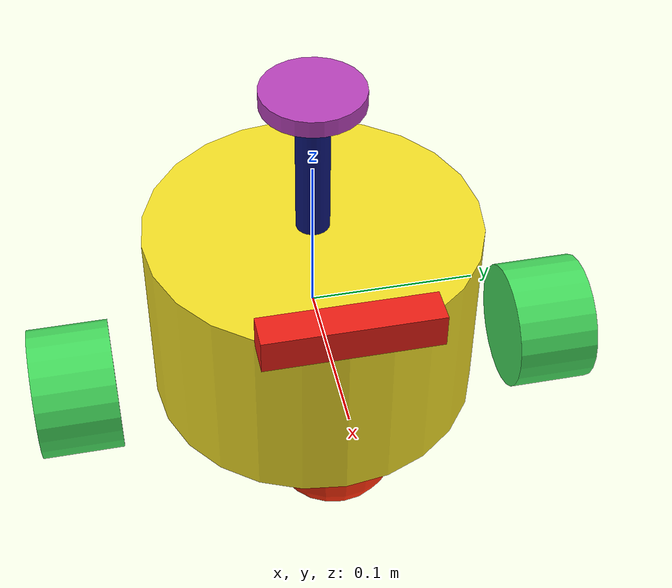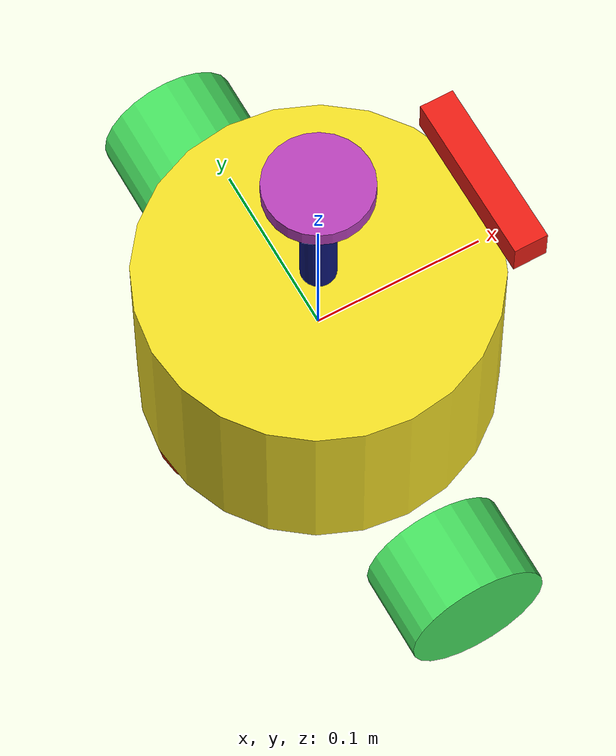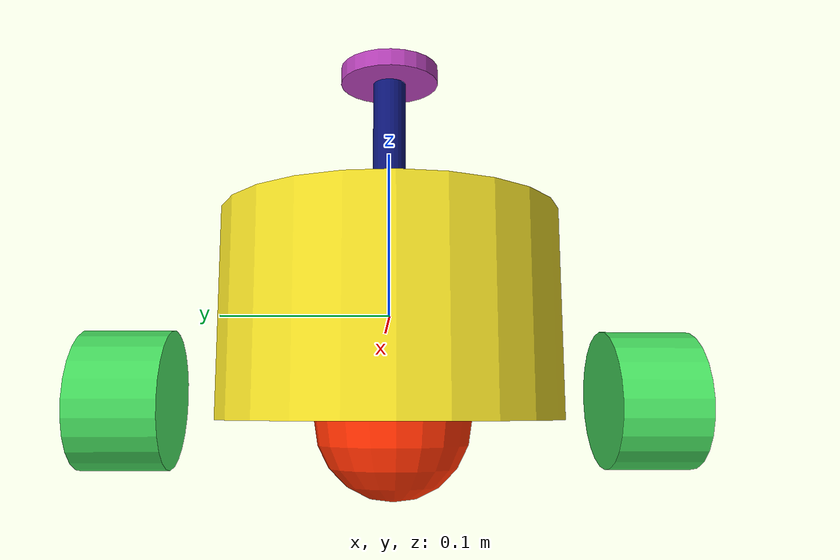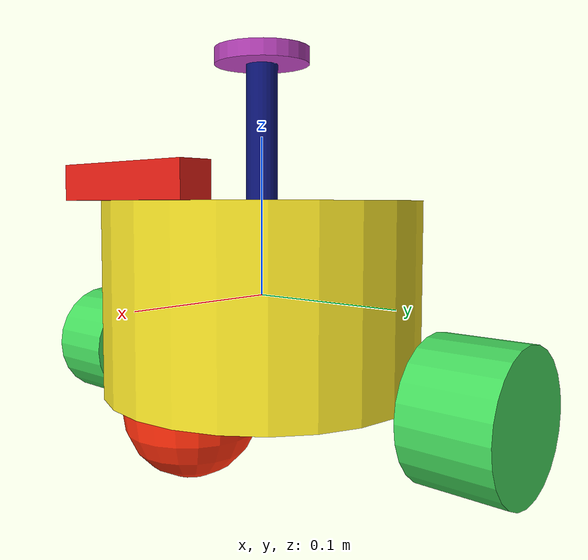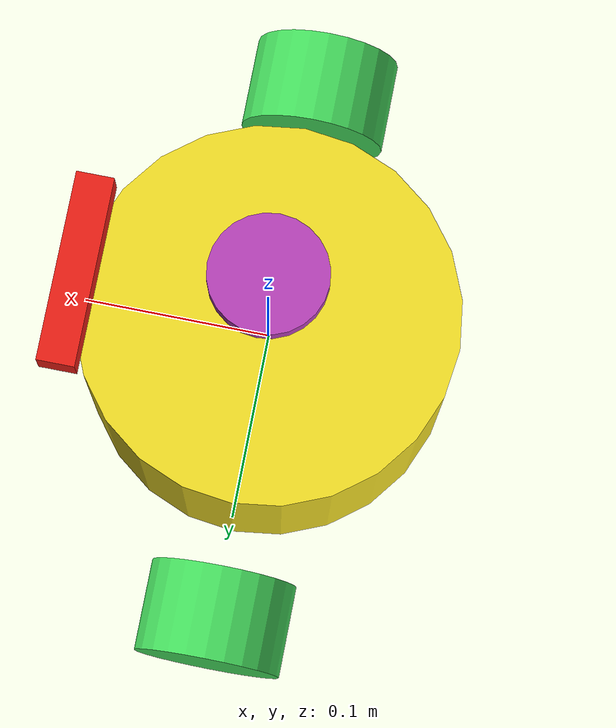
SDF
<sdf version="1.6">
<model name="robot_car" canonical_link='base_footprint'>
  <static>false</static>
  <link name="base_footprint"></link>
  <link name="base_link">
    <pose relative_to='base_footprint'>0 0 0 0 0 0</pose>
    <visual name='base_link visual'>
      <pose>0 0 0 0 0 0</pose>
      <geometry>
        <cylinder>
          <radius>0.1</radius>
          <length>0.12</length>
        </cylinder>
      </geometry>
      <material>
         <ambient>0.9473065367320066 0.8713671191959567 0.14702726648767014 1</ambient>
         <diffuse>0.9473065367320066 0.8713671191959567 0.14702726648767014 1</diffuse>
         <specular>0.1 0.1 0.1 1</specular>
         <emissive>0 0 0 1</emissive>
       </material>
    </visual>
    <collision name='base_link collision'>
      <pose>0 0 0 0 0 0</pose>
      <geometry>
        <cylinder>
          <radius>0.5</radius>
          <length>1</length>
        </cylinder>
      </geometry>
    </collision>
    <inertial>
      <mass>200</mass>
      <inertia>
        <ixx>66.66666666666666</ixx>
        <ixy>0</ixy>
        <ixz>0</ixz>
        <iyy>100</iyy>
        <iyz>0</iyz>
        <izz>66.66666666666666</izz>
      </inertia>
    </inertial>
  </link>
  <joint name="base_footprint_to_base_link" type="fixed">
    <pose relative_to='base_link'>0 0 0 0 0 0 </pose>
    <parent>base_footprint</parent>
    <child>base_link</child>
  </joint>
  <link name="imu">
    <pose relative_to='base_link'>0 0 0 0 0 0</pose>
    <visual name='imu visual'>
      <pose>0 0 0 0 0 0</pose>
      <geometry>
        <box>
          <size>0.1 0.1 0.1</size>
        </box>
      </geometry>
      <material>
         <ambient>0.9215818562755338 0.11953842797895521 0.08228270712149792 1</ambient>
         <diffuse>0.9215818562755338 0.11953842797895521 0.08228270712149792 1</diffuse>
         <specular>0.1 0.1 0.1 1</specular>
         <emissive>0 0 0 1</emissive>
       </material>
    </visual>
    <collision name='imu collision'>
      <pose>0 0 0 0 0 0</pose>
      <geometry>
        <box>
          <size>0.1 0.1 0.1</size>
        </box>
      </geometry>
    </collision>
    <inertial>
      <mass>1</mass>
      <inertia>
        <ixx>0.16666666666666666</ixx>
        <ixy>0</ixy>
        <ixz>0</ixz>
        <iyy>0.16666666666666666</iyy>
        <iyz>0</iyz>
        <izz>0.16666666666666666</izz>
      </inertia>
    </inertial>

        <sensor name="imu" type="imu">
            <always_on>true</always_on>
            <topic>/imu</topic>
            <update_rate>100</update_rate>
            <imu>
                <angular_velocity>
                    <x>
                        <noise type="gaussian">
                            <mean>0</mean>
                            <stddev>0</stddev>
                        </noise>
                    </x>
                    <y>
                        <noise type="gaussian">
                            <mean>0</mean>
                            <stddev>0</stddev>
                        </noise>
                    </y>
                    <z>
                        <noise type="gaussian">
                            <mean>0</mean>
                            <stddev>0</stddev>
                        </noise>
                    </z>
                </angular_velocity>
                <linear_acceleration>
                    <x>
                        <noise type="gaussian">
                            <mean>0</mean>
                            <stddev>0</stddev>
                        </noise>
                    </x>
                    <y>
                        <noise type="gaussian">
                            <mean>0</mean>
                            <stddev>0</stddev>
                        </noise>
                    </y>
                    <z>
                        <noise type="gaussian">
                            <mean>0</mean>
                            <stddev>0</stddev>
                        </noise>
                    </z>
                </linear_acceleration>
            </imu>
        </sensor>
      </link>
  <joint name="base_link_to_imu" type="fixed">
    <pose relative_to='imu'>0 0 0 0 0 0 </pose>
    <parent>base_link</parent>
    <child>imu</child>
  </joint>
  <link name="camera">
    <pose relative_to='base_link'>0.1 0 0.07 0 0 0</pose>
    <visual name='camera visual'>
      <pose>0 0 0 0 0 0</pose>
      <geometry>
        <box>
          <size>0.02 0.1 0.02</size>
        </box>
      </geometry>
      <material>
         <ambient>0.9215818562755338 0.11953842797895521 0.08228270712149792 1</ambient>
         <diffuse>0.9215818562755338 0.11953842797895521 0.08228270712149792 1</diffuse>
         <specular>0.1 0.1 0.1 1</specular>
         <emissive>0 0 0 1</emissive>
       </material>
    </visual>
    <collision name='camera collision'>
      <pose>0 0 0 0 0 0</pose>
      <geometry>
        <box>
          <size>0.02 0.1 0.02</size>
        </box>
      </geometry>
    </collision>
    <inertial>
      <mass>1</mass>
      <inertia>
        <ixx>0.16666666666666666</ixx>
        <ixy>0</ixy>
        <ixz>0</ixz>
        <iyy>0.16666666666666666</iyy>
        <iyz>0</iyz>
        <izz>0.16666666666666666</izz>
      </inertia>
    </inertial>

            <sensor name="camera_camera" type="rgbd_camera">
                <always_on>true</always_on>
                <visualize>true</visualize>
                <update_rate>100</update_rate>
                <topic>/camera</topic>
                <gz_frame_id>camera</gz_frame_id>
                <camera name="camera_camera">
                    <camera_info_topic>camera/camera_info</camera_info_topic>
                    <horizontal_fov>1.3962634</horizontal_fov>
                    <image>
                        <width>800</width>
                        <height>600</height>
                        <format>R8G8B8</format>
                    </image>
                    <clip>
                        <near>0.1</near>
                        <far>100</far>
                    </clip>
                    <noise>
                        <type>gaussian</type>
                        <mean>0</mean>
                        <stddev>0.007</stddev>
                    </noise>
                </camera>
            </sensor>
          </link>
  <joint name="base_link_to_camera" type="fixed">
    <pose relative_to='camera'>0 0 0 0 0 0 </pose>
    <parent>base_link</parent>
    <child>camera</child>
  </joint>
  <link name="front_chaster">
    <pose relative_to='base_link'>0.06 0 -0.06 0 0 0</pose>
    <visual name='front_chaster visual'>
      <pose>0 0 0 0 0 0</pose>
      <geometry>
        <sphere>
          <radius>0.04</radius>
        </sphere>
      </geometry>
      <material>
         <ambient>1 0.181164244239483 0.04231141061442144 1</ambient>
         <diffuse>1 0.181164244239483 0.04231141061442144 1</diffuse>
         <specular>0.1 0.1 0.1 1</specular>
         <emissive>0 0 0 1</emissive>
       </material>
    </visual>
    <collision name='front_chaster collision'>
      <pose>0 0 0 0 0 0</pose>
      <geometry>
        <sphere>
          <radius>0.04</radius>
        </sphere>
      </geometry>
    </collision>
    <inertial>
      <mass>1</mass>
      <inertia>
        <ixx>0.4</ixx>
        <ixy>0</ixy>
        <ixz>0</ixz>
        <iyy>0.4</iyy>
        <iyz>0</iyz>
        <izz>0.4</izz>
      </inertia>
    </inertial>
  </link>
  <joint name="base_link_to_front_chaster" type="fixed">
    <pose relative_to='front_chaster'>0 0 0 0 0 0 </pose>
    <parent>base_link</parent>
    <child>front_chaster</child>
  </joint>
  <link name="back_chaster">
    <pose relative_to='base_link'>-0.06 0 -0.06 0 0 0</pose>
    <visual name='back_chaster visual'>
      <pose>0 0 0 0 0 0</pose>
      <geometry>
        <sphere>
          <radius>0.04</radius>
        </sphere>
      </geometry>
      <material>
         <ambient>1 0.1878207722902346 0 1</ambient>
         <diffuse>1 0.1878207722902346 0 1</diffuse>
         <specular>0.1 0.1 0.1 1</specular>
         <emissive>0 0 0 1</emissive>
       </material>
    </visual>
    <collision name='back_chaster collision'>
      <pose>0 0 0 0 0 0</pose>
      <geometry>
        <sphere>
          <radius>0.04</radius>
        </sphere>
      </geometry>
    </collision>
    <inertial>
      <mass>1</mass>
      <inertia>
        <ixx>0.4</ixx>
        <ixy>0</ixy>
        <ixz>0</ixz>
        <iyy>0.4</iyy>
        <iyz>0</iyz>
        <izz>0.4</izz>
      </inertia>
    </inertial>
  </link>
  <joint name="base_link_to_back_chaster" type="fixed">
    <pose relative_to='back_chaster'>0 0 0 0 0 0 </pose>
    <parent>base_link</parent>
    <child>back_chaster</child>
  </joint>
  <link name="lidar">
    <pose relative_to='base_link'>0 0 0.15000000000000002 0 0 0</pose>
    <visual name='lidar visual'>
      <pose>0 0 0 0 0 0</pose>
      <geometry>
        <cylinder>
          <radius>0.03</radius>
          <length>0.01</length>
        </cylinder>
      </geometry>
      <material>
         <ambient>0.7156935005005721 0.2541520943200296 0.7230551289161951 1</ambient>
         <diffuse>0.7156935005005721 0.2541520943200296 0.7230551289161951 1</diffuse>
         <specular>0.1 0.1 0.1 1</specular>
         <emissive>0 0 0 1</emissive>
       </material>
    </visual>
    <collision name='lidar collision'>
      <pose>0 0 0 0 0 0</pose>
      <geometry>
        <cylinder>
          <radius>0.03</radius>
          <length>0.01</length>
        </cylinder>
      </geometry>
    </collision>
    <inertial>
      <mass>1</mass>
      <inertia>
        <ixx>0.3333333333333333</ixx>
        <ixy>0</ixy>
        <ixz>0</ixz>
        <iyy>0.5</iyy>
        <iyz>0</iyz>
        <izz>0.3333333333333333</izz>
      </inertia>
    </inertial>

        <sensor name="lidar_lidar" type="gpu_lidar">
            <always_on>true</always_on>
            <visualize>true</visualize>
            <pose>-0.064 0 0.121 0 0 0</pose>
            <topic>scan</topic>
            <gz_frame_id>lidar</gz_frame_id>
            <update_rate>5</update_rate>
            <lidar>
                <scan>
                    <horizontal>
                        <samples>360</samples>
                        <resolution>1</resolution>
                        <min_angle>0</min_angle>
                        <max_angle>6.28</max_angle>
                    </horizontal>
                </scan>
                <range>
                    <min>0.12</min>
                    <max>3.5</max>
                    <resolution>0.015</resolution>
                </range>
                <noise>
                    <type>gaussian</type>
                    <mean>0</mean>
                    <stddev>0.01</stddev>
                </noise>
            </lidar>
        </sensor>
      </link>
  <joint name="base_link_to_lidar" type="fixed">
    <pose relative_to='lidar'>0 0 0 0 0 0 </pose>
    <parent>base_link</parent>
    <child>lidar</child>
  </joint>
  <link name="left_wheel">
    <pose relative_to='base_link'>0 0.15 -0.04880298219344714 -1.5707963267948963 0 0</pose>
    <visual name='left_wheel visual'>
      <pose>0 0 0 0 0 0</pose>
      <geometry>
        <cylinder>
          <radius>0.04</radius>
          <length>0.05</length>
        </cylinder>
      </geometry>
      <material>
         <ambient>0.2746773120495699 0.8713671191959567 0.3712376804636741 1</ambient>
         <diffuse>0.2746773120495699 0.8713671191959567 0.3712376804636741 1</diffuse>
         <specular>0.1 0.1 0.1 1</specular>
         <emissive>0 0 0 1</emissive>
       </material>
    </visual>
    <collision name='left_wheel collision'>
      <pose>0 0 0 0 0 0</pose>
      <surface>
        <friction>
          <ode>
              <mu>0.0</mu>
              <mu2>0.0</mu2>
              <kp>1000000000.0</kp>
              <kd>1.0</kd>
              <fdir1>0 0 0</fdir1>
              <slip1>0.0</slip1>
              <slip2>0.0</slip2>
          </ode>
        </friction>
      </surface>
      <geometry>
        <cylinder>
          <radius>0.04</radius>
          <length>0.05</length>
        </cylinder>
      </geometry>
    </collision>
    <inertial>
      <mass>1</mass>
      <inertia>
        <ixx>0.3333333333333333</ixx>
        <ixy>0</ixy>
        <ixz>0</ixz>
        <iyy>0.5</iyy>
        <iyz>0</iyz>
        <izz>0.3333333333333333</izz>
      </inertia>
    </inertial>
  </link>
  <joint name="base_link_to_left_wheel" type="continuous">
    <pose relative_to='left_wheel'>0 0 0 0 0 0 </pose>
    <parent>base_link</parent>
    <child>left_wheel</child>
    <axis>
        <xyz expressed_in='left_wheel'>0 0 1</xyz>
    </axis>
  </joint>
  <link name="right_wheel">
    <pose relative_to='base_link'>0 -0.15 -0.04880298219344714 -1.5707963267948963 0 0</pose>
    <visual name='right_wheel visual'>
      <pose>0 0 0 0 0 0</pose>
      <geometry>
        <cylinder>
          <radius>0.04</radius>
          <length>0.05</length>
        </cylinder>
      </geometry>
      <material>
         <ambient>0.2746773120495699 0.8713671191959567 0.3712376804636741 1</ambient>
         <diffuse>0.2746773120495699 0.8713671191959567 0.3712376804636741 1</diffuse>
         <specular>0.1 0.1 0.1 1</specular>
         <emissive>0 0 0 1</emissive>
       </material>
    </visual>
    <collision name='right_wheel collision'>
      <pose>0 0 0 0 0 0</pose>
      <surface>
        <friction>
          <ode>
              <mu>0.0</mu>
              <mu2>0.0</mu2>
              <kp>1000000000.0</kp>
              <kd>1.0</kd>
              <fdir1>0 0 0</fdir1>
              <slip1>0.0</slip1>
              <slip2>0.0</slip2>
          </ode>
        </friction>
      </surface>
      <geometry>
        <cylinder>
          <radius>0.04</radius>
          <length>0.05</length>
        </cylinder>
      </geometry>
    </collision>
    <inertial>
      <mass>1</mass>
      <inertia>
        <ixx>0.3333333333333333</ixx>
        <ixy>0</ixy>
        <ixz>0</ixz>
        <iyy>0.5</iyy>
        <iyz>0</iyz>
        <izz>0.3333333333333333</izz>
      </inertia>
    </inertial>
  </link>
  <joint name="base_link_to_right_wheel" type="revolute">
    <pose relative_to='right_wheel'>0 0 0 0 0 0 </pose>
    <parent>base_link</parent>
    <child>right_wheel</child>
    <axis>
        <xyz expressed_in='right_wheel'>0 0 1</xyz>
    </axis>
  </joint>
  <link name="lidar_support">
    <pose relative_to='base_link'>0 0 0.1 0 0 0</pose>
    <visual name='lidar_support visual'>
      <pose>0 0 0 0 0 0</pose>
      <geometry>
        <cylinder>
          <radius>0.01</radius>
          <length>0.1</length>
        </cylinder>
      </geometry>
      <material>
         <ambient>0.04666508633021928 0.08228270712149792 0.4735314961384573 1</ambient>
         <diffuse>0.04666508633021928 0.08228270712149792 0.4735314961384573 1</diffuse>
         <specular>0.1 0.1 0.1 1</specular>
         <emissive>0 0 0 1</emissive>
       </material>
    </visual>
    <collision name='lidar_support collision'>
      <pose>0 0 0 0 0 0</pose>
      <geometry>
        <cylinder>
          <radius>0.5</radius>
          <length>1</length>
        </cylinder>
      </geometry>
    </collision>
    <inertial>
      <mass>1</mass>
      <inertia>
        <ixx>0.3333333333333333</ixx>
        <ixy>0</ixy>
        <ixz>0</ixz>
        <iyy>0.5</iyy>
        <iyz>0</iyz>
        <izz>0.3333333333333333</izz>
      </inertia>
    </inertial>
  </link>
  <joint name="base_link_to_lidar_support" type="fixed">
    <pose relative_to='lidar_support'>0 0 0 0 0 0 </pose>
    <parent>base_link</parent>
    <child>lidar_support</child>
  </joint>
    <plugin name="gz::sim::systems::JointStatePublisher" filename="gz-sim-joint-state-publisher-system">
        <topic>joint_states</topic>
        <joint_name>base_link_to_right_wheel</joint_name>
        <joint_name>base_link_to_left_wheel</joint_name>
    </plugin>
    <plugin filename="gz-sim-diff-drive-system" name="gz::sim::systems::DiffDrive">
      <left_joint>base_link_to_left_wheel</left_joint>
      <right_joint>base_link_to_right_wheel</right_joint>
      <wheel_separation>0.3</wheel_separation>
      <wheel_radius>0.04</wheel_radius>
      <max_linear_acceleration>0.033</max_linear_acceleration>
      <odom_topic>odom</odom_topic>
      <topic>cmd_vel</topic>
      <frame_id>odom</frame_id>
      <child_frame_id>base_footprint</child_frame_id>
      <odom_publisher_frequency>30</odom_publisher_frequency>
      <tf_topic>/tf</tf_topic>
    </plugin>
</model>
</sdf>
